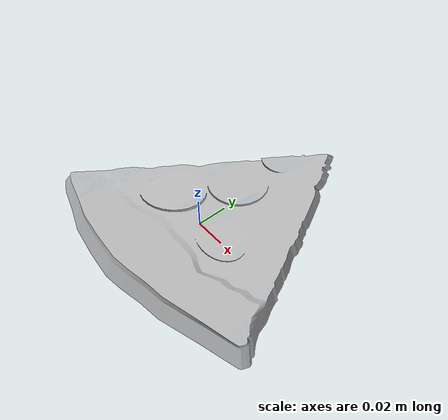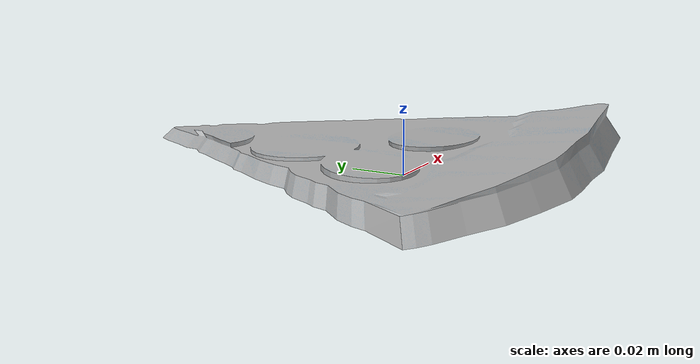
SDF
<?xml version="1.0" ?>
<sdf version="1.5">
  <model name="pizza">
    <link name="link">
      <collision name="collision">
        <geometry>
          <mesh>
            <uri>model://pizza/meshes/model.dae</uri>
          </mesh>
        </geometry>
      </collision>
      <visual name="visual">
        <geometry>
          <mesh>
            <uri>model://pizza/meshes/model.dae</uri>
          </mesh>
        </geometry>
        <material>
          <script>
            <uri>model://pizza/meshes/model</uri>
          </script>
        </material>
      </visual>
    </link>
    <static>1</static>
  </model>
</sdf>
